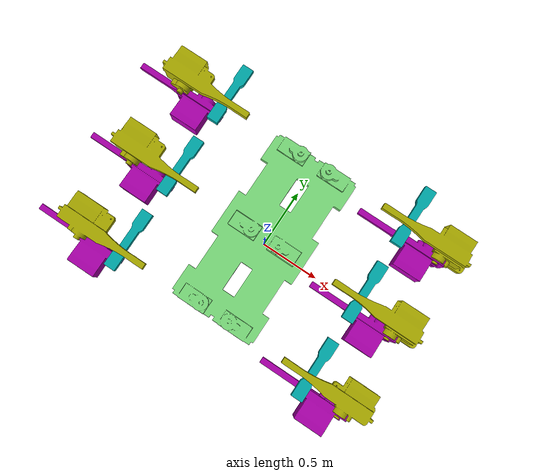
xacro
<?xml version="1.0"?>
<robot xmlns:xacro="http://ros.org/wiki/xacro" name="crab">

<!--################### Declaracão de variaveis e constantes ################-->
	<xacro:property name="pi" value="3.1415926535897931" />
	<xacro:property name="altura_base" value="0.4" />
<!-- Distancia das pecas -->
	<xacro:property name="dist_coxa_x_d" value="0.5" />
	<xacro:property name="dist_coxa_x_e" value="-0.5" />
	<xacro:property name="dist_femurl_x_d" value="-0.17" />
	<xacro:property name="dist_femurl_x_e" value="0.17" />
	<xacro:property name="dist_femurj_x_d" value="0.52" />
	<xacro:property name="dist_femurj_x_e" value="-0.52" />
	<xacro:property name="dist_tibiaj_x_d" value="-0.35" />
	<xacro:property name="dist_tibiaj_x_e" value="0.35 " />
	<xacro:property name="xunxo_d" value="0" />
	<xacro:property name="xunxo_e" value="0.02 " />
	<xacro:property name="altura_f_d" value="0" />
	<xacro:property name="altura_f_e" value="0.04" />
	<xacro:property name="altura_d" value="-0" />
	<xacro:property name="altura_e" value="0.05" />
	<xacro:property name="dist_tibiaj_x_e" value="0.35 " />
	<xacro:property name="fund" value="-0.17 " />
	<xacro:property name="fune" value="0.17 " />

<!-- Joint properties -->
	<xacro:property name="joint_lower_limit" value="-${pi/2}" />
	<xacro:property name="joint_upper_limit" value="${pi/2}" />
	<xacro:property name="joint_effort" value="10000" />
	<xacro:property name="joint_velocity" value="100" />

    <gazebo>
        <plugin name="gazebo_ros_control" filename="libgazebo_ros_control.so">
            <robotNamespace>/crab</robotNamespace>
        </plugin>
    </gazebo>

<!--######################## Faz a Base do Robo #############################-->
<link name="base_link"/>
<joint name="base_joint" type="fixed">
	<parent link="base_link"/>
	<child link="thorax"/>
	<origin rpy="0 0 0" xyz="0 0 0"/>
</joint>

  <link name="thorax">
    <visual>
      <geometry>
        <mesh scale="0.01 0.01 0.01" filename="package://modelo/meshes/base.stl"/>
      </geometry>
      <origin rpy="0 0 ${pi/2}" xyz="0 0 ${altura_base}"/>
      <material name="verde_limao">
        <color rgba="0.5 0.9 0.5 1"/>
      </material>
    </visual>
<collision>
            <origin xyz="0.0 0.0 0.0" rpy="0.0 0.0 0.0"/>
            <geometry>
                <mesh scale="0.01 0.01 0.01" filename="package://modelo/meshes/base.stl"/>
            </geometry>
      <material name="verde_limao">
        <color rgba="0.5 0.9 0.5 1"/>
      </material>
        </collision>

        <inertial>
            <origin xyz="0.0 0.0 0.0" rpy="0.0 0.0 0.0" />
            <mass value="0.1"/>
            <inertia
                ixx="1.0" ixy="0.0"  ixz="0.0"
                iyy="1.0" iyz="0.0"
                izz="1.0" />
        </inertial>
  </link>

  <gazebo reference="thorax">
    <mu1>0.2</mu1>
    <mu2>0.2</mu2>
    <material>Gazebo/Black</material>
  </gazebo>

<!--################## Macros da Perna/Fazendo a perna em si ################-->
<xacro:macro name="leg" params="lado num x y angulo dist_x_coxa dist_femurj_x
	dist_tibiaj_x fun altura xunxo altura_f">

<!--Joint e Link para fixar coxa (caso contrario gira em torno do centro da base)-->
	<joint name="leg_center_joint_${lado}${num}" type="fixed">
	  <origin xyz="${x} ${y} ${altura_base+ 0.11}" rpy="0 0 0" /> <!-- imp -->
	  <parent link="thorax" />
	  <child link="leg_center_${lado}${num}" />
	</joint>

	<link name="leg_center_${lado}${num}" >
        <inertial>
            <origin xyz="0.0 0.0 0.0" rpy="0.0 0.0 0.0" />
            <mass value="0.01"/>
            <inertia
                ixx="1.0" ixy="0.0"  ixz="0.0"
                iyy="1.0" iyz="0.0"
                izz="1.0" />
        </inertial>
</link>

<!--.................Joint entre "base"() e coxa / Link da Coxa .............-->
<joint name="coxa_joint_${lado}${num}" type="revolute">
  <origin xyz="0 0 ${altura}" rpy="0 ${pi/2} 0" /> <!-- segundo-->
  <parent link="leg_center_${lado}${num}"/>
  <child link="coxa_${lado}${num}" />
  <limit lower="${joint_lower_limit}" upper="${joint_upper_limit}"
     effort="${joint_effort}" velocity="${joint_velocity}" />
</joint>

        <transmission name="coxa_transmission_${lado}${num}">
            <type>transmission_interface/SimpleTransmission</type>
            <joint name="coxa_joint_${lado}${num}">
                <hardwareInterface>EffortJointInterface</hardwareInterface>
            </joint>
            <actuator name="coxa_motor_${lado}${num}">
                <hardwareInterface>EffortJointInterface</hardwareInterface>
                <mechanicalReduction>1</mechanicalReduction>
            </actuator>
        </transmission>

<link name="coxa_${lado}${num}">
    <visual>
        <origin xyz="0 0 ${dist_x_coxa}" rpy="0 ${-pi/2} 0" />
        <geometry>
          <mesh scale="0.01 0.01 0.01" filename="package://modelo/meshes/coxa_${lado}.stl"/>
        </geometry>
        <material name="">
          <color rgba="0.7 0.7 0 1" />
        </material>
    </visual>
<collision>
            <origin xyz="0 0 ${dist_x_coxa}" rpy="0 ${-pi/2} 0" />
            <geometry>
                <mesh scale="0.01 0.01 0.01" filename="package://modelo/meshes/coxa_${lado}.stl"/>
            </geometry>
        <material name="">
          <color rgba="0.7 0.7 0 1" />
      </material>
        </collision>
        <inertial>
            <origin xyz="0.0 0.0 0.0" rpy="0.0 0.0 0.0" />
            <mass value="0.01"/>
            <inertia
                ixx="1.0" ixy="0.0"  ixz="0.0"
                iyy="1.0" iyz="0.0"
                izz="1.0" />
        </inertial>
</link>

  <gazebo reference="coxa_${lado}${num}">
    <mu1>0.2</mu1>
    <mu2>0.2</mu2>
    <material>Gazebo/BlueLaser  </material>
  </gazebo>

<!--.................Joint entre coxa e femur / Link ddo Femur. .............-->
<joint name="femur_joint_${lado}${num}" type="revolute">
		<origin xyz="${altura_f} ${xunxo} ${dist_femurj_x}" rpy="${-pi/2} 0 0" />
		<parent link="coxa_${lado}${num}" />
		<child link="femur_${lado}${num}" />
		<axis xyz="0 0 -1" />
		<limit lower="${joint_lower_limit}" upper="${joint_upper_limit}" effort="${joint_effort}" velocity="${joint_velocity}" />
</joint>

        <transmission name="femur_transmission_${lado}${num}">
            <type>transmission_interface/SimpleTransmission</type>
            <joint name="femur_joint_${lado}${num}">
                <hardwareInterface>EffortJointInterface</hardwareInterface>
            </joint>
            <actuator name="femur_motor_${lado}${num}">
                <hardwareInterface>EffortJointInterface</hardwareInterface>
                <mechanicalReduction>1</mechanicalReduction>
            </actuator>
        </transmission>

<link name="femur_${lado}${num}">
		<visual>
				<origin xyz="0.05 ${fun} -0.13" rpy="0 ${pi} ${pi/2}" />
				<geometry>
					<mesh scale="0.01 0.01 0.01"  filename="package://modelo/meshes/femur.stl" />
				</geometry>
				<material name="">
					<color rgba="0 0.7 0.7 1" />
				</material>
		</visual>
<collision>
            <origin xyz="0.05 ${fun} -0.13" rpy="0 ${pi} ${pi/2}" />
            <geometry>
                <mesh scale="0.01 0.01 0.01"  filename="package://modelo/meshes/femur.stl" />
            </geometry>
        <material name="">
					<color rgba="0 0.7 0.7 1" />
				</material>
        </collision>
        <inertial>
            <origin xyz="0.0 0.0 0.0" rpy="0.0 0.0 0.0" />
            <mass value="0.01"/>
            <inertia
                ixx="1.0" ixy="0.0"  ixz="0.0"
                iyy="1.0" iyz="0.0"
                izz="1.0" />
        </inertial>
</link>

  <gazebo reference="femur_${lado}${num}">
    <mu1>0.2</mu1>
    <mu2>0.2</mu2>
    <material>Gazebo/BlueLaser </material>
  </gazebo>
<!--.................Joint entre femur e Tibia / Link do Tibia. .............-->
<joint name="tibia_joint_${lado}${num}" type="revolute">
		<origin xyz="0.05 ${dist_tibiaj_x} 0" rpy="${pi} 0 ${pi/2}" />
		<parent link="femur_${lado}${num}" />
		<child link="tibia_${lado}${num}" />
		<axis xyz="0 0 1" />
		<limit lower="${joint_lower_limit}" upper="${joint_upper_limit}" effort="${joint_effort}" velocity="${joint_velocity}" />
</joint>

        <transmission name="tibia_transmission_${lado}${num}">
            <type>transmission_interface/SimpleTransmission</type>
            <joint name="tibia_joint_${lado}${num}">
                <hardwareInterface>EffortJointInterface</hardwareInterface>
            </joint>
            <actuator name="tibia_motor_${lado}${num}">
                <hardwareInterface>EffortJointInterface</hardwareInterface>
                <mechanicalReduction>1</mechanicalReduction>
            </actuator>
        </transmission>

<link name="tibia_${lado}${num}">
		<visual>
				<origin xyz="-0.05 0.06 0" rpy="${pi/2} 0  ${-pi/2} " />
				<geometry>
					<mesh scale="0.01 0.01 0.01" filename="package://modelo/meshes/tibia.stl" />
				</geometry>
				<material name="">
					<color rgba="0.7 0 0.7 1" />
				</material>
		</visual>
<collision>
            <origin xyz="-0.05 0.06 0" rpy="${pi/2} 0  ${-pi/2} " />
            <geometry>
                <mesh scale="0.01 0.01 0.01" filename="package://modelo/meshes/tibia.stl" />
            </geometry>
        <material name="">
					<color rgba="0 0.7 0.7 1" />
				</material>
        </collision>
        <inertial>
            <origin xyz="0.0 0.0 0.0" rpy="0.0 0.0 0.0" />
            <mass value="0.01"/>
            <inertia
                ixx="1.0" ixy="0.0"  ixz="0.0"
                iyy="1.0" iyz="0.0"
                izz="1.0" />
        </inertial>
</link>

  <gazebo reference="tibia_${lado}${num}">
    <mu1>0.2</mu1>
    <mu2>0.2</mu2>
    <material>Gazebo/BlueTransparent </material>
  </gazebo>

<!--.................Joint/ Link da para do robo.............................-->
<joint name="tibia_foot_joint_${lado}${num}" type="fixed">
        <origin xyz="0 0 0" rpy="0 0 0" />
        <parent link="tibia_${lado}${num}" />
        <child link="tibia_foot_${lado}${num}" />
    </joint>

    <link name="tibia_foot_${lado}${num}" >
        <inertial>
            <origin xyz="0.0 0.0 0.0" rpy="0.0 0.0 0.0" />
            <mass value="0.01"/>
            <inertia
                ixx="1.0" ixy="0.0"  ixz="0.0"
                iyy="1.0" iyz="0.0"
                izz="1.0" />
        </inertial>
</link>

</xacro:macro>

<!--################# Declaracão da perna e suas posicoes ###################-->
<xacro:leg lado="e" num="1" x="${-2.3/20}" y="0.65" angulo="${0}"
	dist_x_coxa="${dist_coxa_x_e}" dist_femurj_x="${dist_femurj_x_e}"
	dist_tibiaj_x="${dist_tibiaj_x_e}" fun="${fune}" altura="${altura_e}"
	xunxo="${xunxo_e}" altura_f="${altura_f_e}" />

<xacro:leg lado="e" num="2" x="${-2.3/20}" y="0" angulo="${0}"
	dist_x_coxa="${dist_coxa_x_e}" dist_femurj_x="${dist_femurj_x_e}"
	dist_tibiaj_x="${dist_tibiaj_x_e}" fun="${fune}" altura="${altura_e}"
	xunxo="${xunxo_e}" altura_f="${altura_f_e}" />

<xacro:leg lado="e" num="3" x="${-2.3/20}" y="-0.65" angulo="${0}"
	dist_x_coxa="${dist_coxa_x_e}" dist_femurj_x="${dist_femurj_x_e}"
	dist_tibiaj_x="${dist_tibiaj_x_e}" fun="${fune}" altura="${altura_e}"
	xunxo="${xunxo_e}" altura_f="${altura_f_e}" />

<xacro:leg lado="d" num="2" x="${2.3/20}" y="0" angulo="${0}"
	dist_x_coxa="${dist_coxa_x_d}" dist_femurj_x="${dist_femurj_x_d}"
	dist_tibiaj_x="${dist_tibiaj_x_d}" fun="${fund}" altura="${altura_d}"
	xunxo= "${xunxo_d}"  altura_f="${altura_f_d}" />

<xacro:leg lado="d" num="1" x="${2.3/20}" y="0.65" angulo="${0}"
	dist_x_coxa="${dist_coxa_x_d}" dist_femurj_x="${dist_femurj_x_d}"
	dist_tibiaj_x="${dist_tibiaj_x_d}" fun="${fund}" altura="${altura_d}"
	xunxo= "${xunxo_d}"  altura_f="${altura_f_d}" />

<xacro:leg lado="d" num="3" x="${2.3/20}" y="-0.65" angulo="${0}"
	dist_x_coxa="${dist_coxa_x_d}" dist_femurj_x="${dist_femurj_x_d}"
	dist_tibiaj_x="${dist_tibiaj_x_d}" fun="${fund}" altura="${altura_d}"
	xunxo= "${xunxo_d}"  altura_f="${altura_f_d}" />

</robot>
